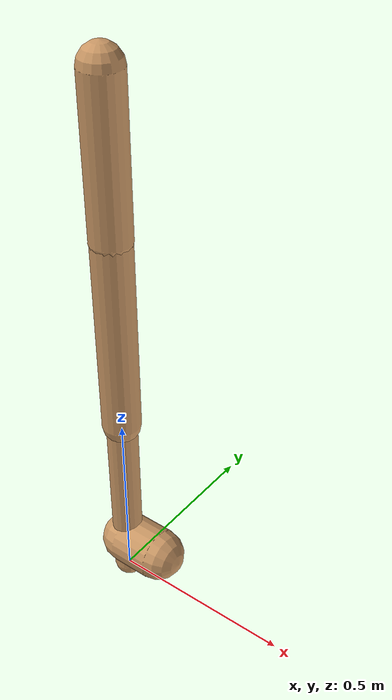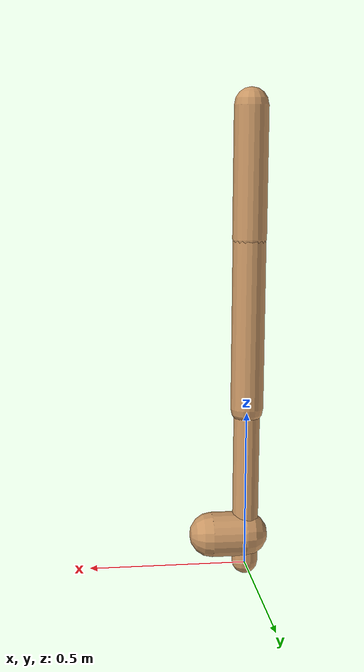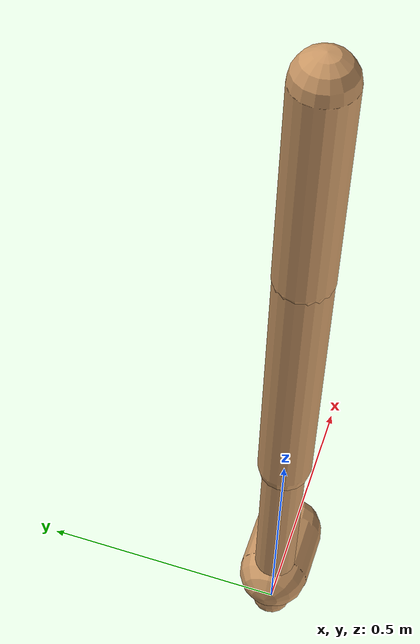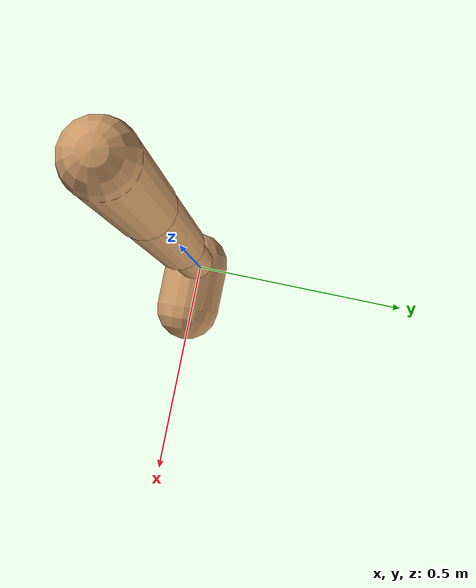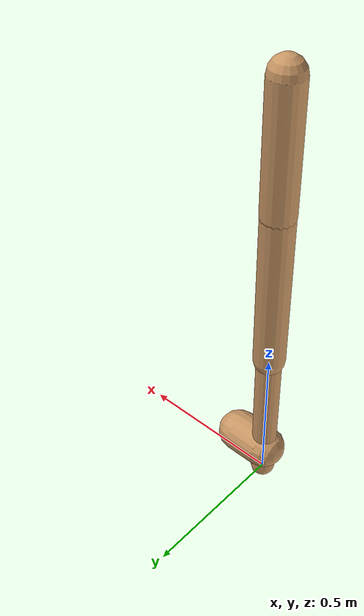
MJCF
<mujoco model="walker2d">
  <compiler angle="degree" coordinate="global" inertiafromgeom="true" />
  <default>
    <joint armature="0.01" damping=".1" limited="true" />
    <geom conaffinity="0" condim="3" contype="1" density="1000" friction="0.8 .1 .1" rgba="0.8 0.6 .4 1" />
  </default>
  <option integrator="RK4" timestep="0.002" />
  <worldbody>

    <body name="torso" pos="0 0 0.17466369721659714">
      <joint armature="0" axis="1 0 0" damping="0" limited="false" name="ignorex" pos="0 0 0" stiffness="0" type="slide" />
      <joint armature="0" axis="0 0 1" damping="0" limited="false" name="ignorez" pos="0 0 0" ref="1.25" stiffness="0" type="slide" />
      <joint armature="0" axis="0 1 0" damping="0" limited="false" name="ignorey" pos="0 0 0" stiffness="0" type="hinge" />
      <geom fromto="0 0 1.45 0 0 1.05" name="torso_geom" size="0.052873430576363026" type="capsule" />
      <body name="thigh">
        <joint axis="0 -1 0" name="thigh_joint" pos="0 0 1.05" range="-150 0" type="hinge" />
        <geom fromto="0.0 0.0 1.05 0.0 0.0 0.5172645644763487" name="thigh_geom" size="0.051559260518250064" type="capsule" />
        <body name="leg" pos="0.0 0.0 -0.08273543552365126">
          <joint axis="0 -1 0" name="leg_joint" pos="0 0 0.6" range="-150 0" type="hinge" />
          <geom fromto="0.0 0.0 0.6 0.0 0.0 0.008071738307054155" name="leg_geom" size="0.04124740841460005" type="capsule" />
          <body name="foot" pos="0.0 0.0 -0.09192826169294585">
            <joint axis="0 -1 0" name="foot_joint" pos="0 0 0.1" range="-45 45" type="hinge" />
            <geom fromto="0.0 0.0 0.1 0.10895614288670337 0.0 0.1" name="foot_geom" size="0.07162311723050405" type="capsule" />
          </body>
        </body>
      </body>

      <body name="thigh_left">
        <joint axis="0 -1 0" name="thigh_left_joint" pos="0 0 1.05" range="-150 0" type="hinge" />
        <geom fromto="0.0 0.0 1.05 0.0 0.0 0.5172645644763487" name="thigh_left_geom" rgba=".7 .3 .6 1" size="0.051559260518250064" type="capsule" />
        <body name="leg_left" pos="0.0 0.0 -0.08273543552365126">
          <joint axis="0 -1 0" name="leg_left_joint" pos="0 0 0.6" range="-150 0" type="hinge" />
          <geom fromto="0.0 0.0 0.6 0.0 0.0 0.008071738307054155" name="leg_left_geom" rgba=".7 .3 .6 1" size="0.04124740841460005" type="capsule" />
          <body name="foot_left" pos="0.0 0.0 -0.09192826169294585">
            <joint axis="0 -1 0" name="foot_left_joint" pos="0 0 0.1" range="-45 45" type="hinge" />
            <geom fromto="0.0 0.0 0.1 0.10895614288670337 0.0 0.1" name="foot_left_geom" rgba=".7 .3 .6 1" size="0.07162311723050405" type="capsule" />
          </body>
        </body>
      </body>
    </body>
  </worldbody>
  <actuator>

    <motor ctrllimited="true" ctrlrange="-1.0 1.0" gear="100" joint="thigh_joint" />
    <motor ctrllimited="true" ctrlrange="-1.0 1.0" gear="100" joint="leg_joint" />
    <motor ctrllimited="true" ctrlrange="-1.0 1.0" gear="100" joint="foot_joint" />
    <motor ctrllimited="true" ctrlrange="-1.0 1.0" gear="100" joint="thigh_left_joint" />
    <motor ctrllimited="true" ctrlrange="-1.0 1.0" gear="100" joint="leg_left_joint" />
    <motor ctrllimited="true" ctrlrange="-1.0 1.0" gear="100" joint="foot_left_joint" />

  </actuator>
</mujoco>
